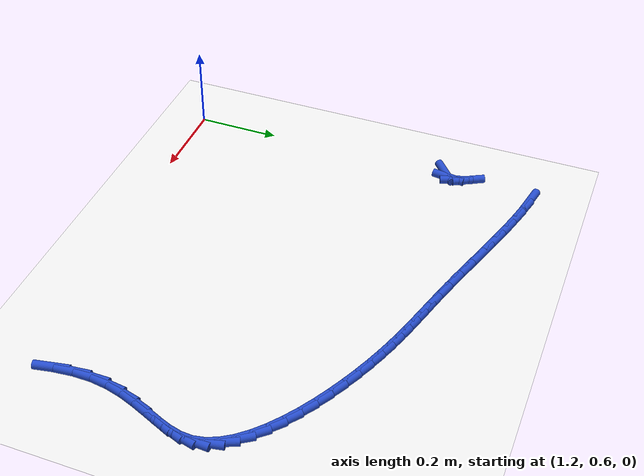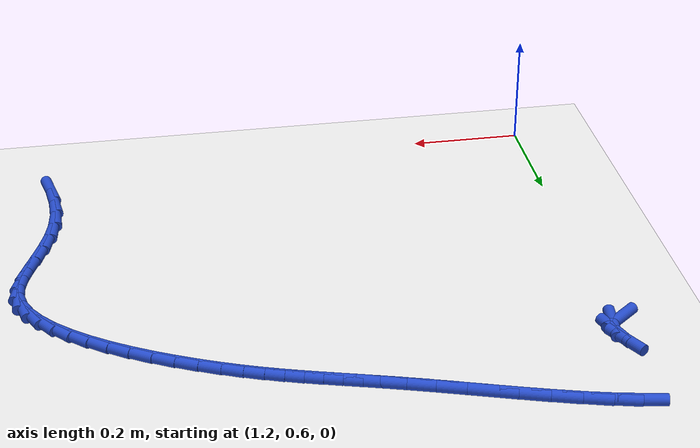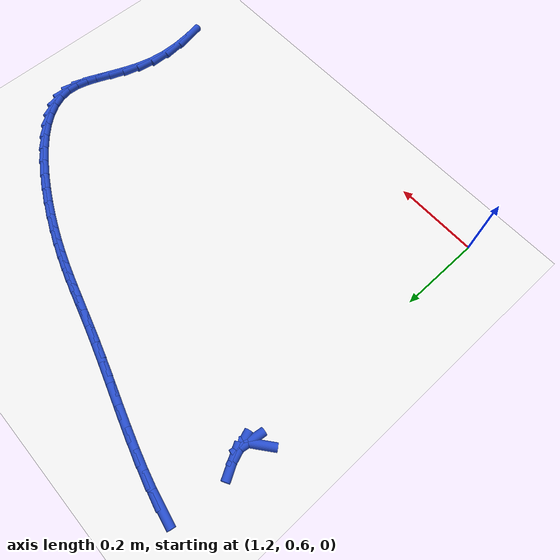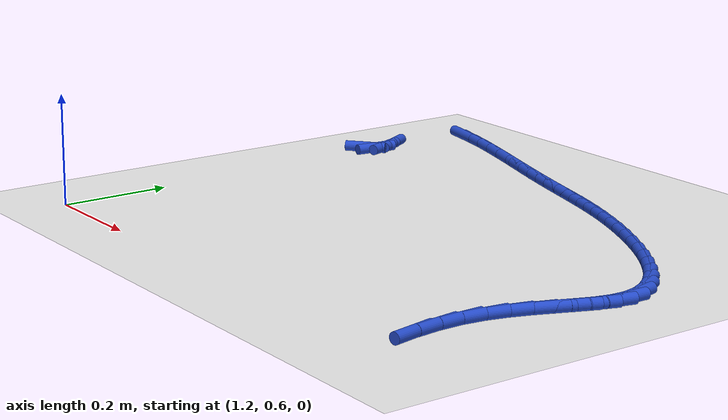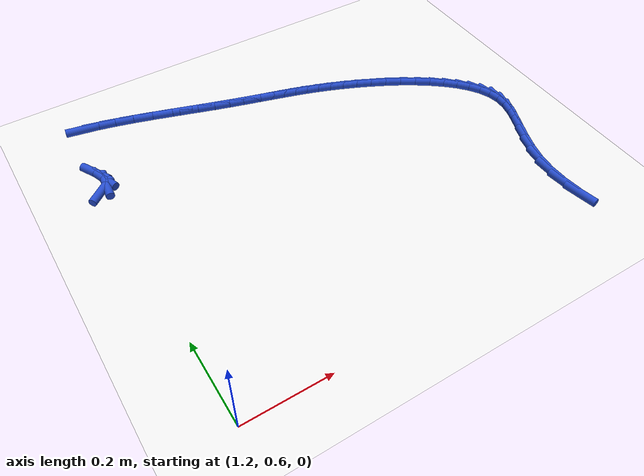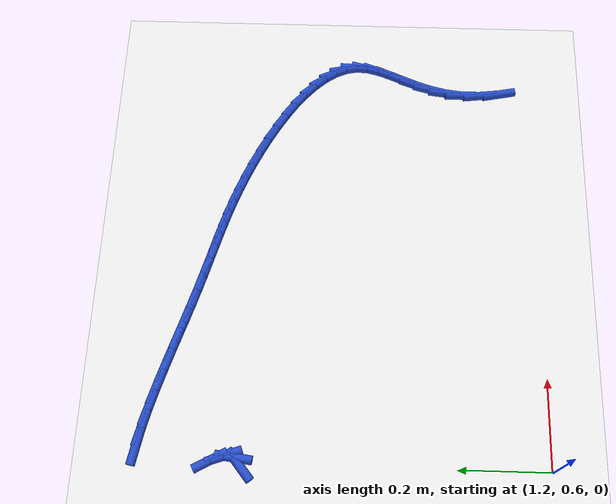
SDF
<sdf version="1.6">
 <world name="default">
  <model name="ground_plane">
   <static>1</static>
   <link name="link">
    <collision name="collision">
     <geometry><plane><normal>0 0 1</normal><size>100 100</size></plane></geometry>
     <surface><friction><ode><mu>100</mu><mu2>50</mu2></ode></friction></surface>
    </collision>
    <visual name="visual">
     <cast_shadows>0</cast_shadows>
     <geometry><plane><normal>0 0 1</normal><size>100 100</size></plane></geometry>
     <material>
      <script><uri>file://media/materials/scripts/gazebo.material</uri><name>Gazebo/WhiteGlow</name></script>
     </material>
    </visual>
   </link>
  </model>
  <model name="line">
   <link name="link_58">
    <pose>1.1975849651690709 1.2562851099100683 0.01 0 1.57 0.6848993251407175</pose>
    <collision name="collision">
     <geometry><cylinder><radius>0.01</radius><length>0.08</length></cylinder></geometry>
    </collision>
    <visual name="visual">
     <material>
      <script><name>Gazebo/Blue</name><uri>file://media/materials/scripts/gazebo.material</uri></script>
     </material>
     <geometry><cylinder><radius>0.01</radius><length>0.08</length></cylinder></geometry>
    </visual>
   </link>
   <link name="link_59">
    <pose>1.2131271688976257 1.2689799326258182 0.01 0 1.57 1.441574710932317</pose>
    <collision name="collision">
     <geometry><cylinder><radius>0.01</radius><length>0.08</length></cylinder></geometry>
    </collision>
    <visual name="visual">
     <material>
      <script><name>Gazebo/Blue</name><uri>file://media/materials/scripts/gazebo.material</uri></script>
     </material>
     <geometry><cylinder><radius>0.01</radius><length>0.08</length></cylinder></geometry>
    </visual>
   </link>
   <link name="link_60">
    <pose>1.2157745795685786 1.2893531382696346 0.01 0 1.57 -1.2304302910337432</pose>
    <collision name="collision">
     <geometry><cylinder><radius>0.01</radius><length>0.08</length></cylinder></geometry>
    </collision>
    <visual name="visual">
     <material>
      <script><name>Gazebo/Blue</name><uri>file://media/materials/scripts/gazebo.material</uri></script>
     </material>
     <geometry><cylinder><radius>0.01</radius><length>0.08</length></cylinder></geometry>
    </visual>
   </link>
   <link name="link_61">
    <pose>1.2059461501882858 1.3171054001357274 0.01 0 1.57 -1.0698379763237298</pose>
    <collision name="collision">
     <geometry><cylinder><radius>0.01</radius><length>0.08</length></cylinder></geometry>
    </collision>
    <visual name="visual">
     <material>
      <script><name>Gazebo/Blue</name><uri>file://media/materials/scripts/gazebo.material</uri></script>
     </material>
     <geometry><cylinder><radius>0.01</radius><length>0.08</length></cylinder></geometry>
    </visual>
   </link>
   <link name="link_70">
    <pose>1.2306203671135896 1.475708823409219 0.01 0 1.57 -0.19051296776615328</pose>
    <collision name="collision">
     <geometry><cylinder><radius>0.01</radius><length>0.08</length></cylinder></geometry>
    </collision>
    <visual name="visual">
     <material>
      <script><name>Gazebo/Blue</name><uri>file://media/materials/scripts/gazebo.material</uri></script>
     </material>
     <geometry><cylinder><radius>0.01</radius><length>0.08</length></cylinder></geometry>
    </visual>
   </link>
   <link name="link_71">
    <pose>1.2696224498608981 1.4681872003405705 0.01 0 1.57 -0.24040319338311478</pose>
    <collision name="collision">
     <geometry><cylinder><radius>0.01</radius><length>0.08</length></cylinder></geometry>
    </collision>
    <visual name="visual">
     <material>
      <script><name>Gazebo/Blue</name><uri>file://media/materials/scripts/gazebo.material</uri></script>
     </material>
     <geometry><cylinder><radius>0.01</radius><length>0.08</length></cylinder></geometry>
    </visual>
   </link>
   <link name="link_72">
    <pose>1.3125623816844578 1.4576607300851463 0.01 0 1.57 -0.2725953391649666</pose>
    <collision name="collision">
     <geometry><cylinder><radius>0.01</radius><length>0.08</length></cylinder></geometry>
    </collision>
    <visual name="visual">
     <material>
      <script><name>Gazebo/Blue</name><uri>file://media/materials/scripts/gazebo.material</uri></script>
     </material>
     <geometry><cylinder><radius>0.01</radius><length>0.08</length></cylinder></geometry>
    </visual>
   </link>
   <link name="link_73">
    <pose>1.3581675200273675 1.444911618475503 0.01 0 1.57 -0.2932173468096086</pose>
    <collision name="collision">
     <geometry><cylinder><radius>0.01</radius><length>0.08</length></cylinder></geometry>
    </collision>
    <visual name="visual">
     <material>
      <script><name>Gazebo/Blue</name><uri>file://media/materials/scripts/gazebo.material</uri></script>
     </material>
     <geometry><cylinder><radius>0.01</radius><length>0.08</length></cylinder></geometry>
    </visual>
   </link>
   <link name="link_74">
    <pose>1.405165222332727 1.430722071344198 0.01 0 1.57 -0.3052713640028765</pose>
    <collision name="collision">
     <geometry><cylinder><radius>0.01</radius><length>0.08</length></cylinder></geometry>
    </collision>
    <visual name="visual">
     <material>
      <script><name>Gazebo/Blue</name><uri>file://media/materials/scripts/gazebo.material</uri></script>
     </material>
     <geometry><cylinder><radius>0.01</radius><length>0.08</length></cylinder></geometry>
    </visual>
   </link>
   <link name="link_75">
    <pose>1.452282846043637 1.4158742945237885 0.01 0 1.57 -0.3099995682612716</pose>
    <collision name="collision">
     <geometry><cylinder><radius>0.01</radius><length>0.08</length></cylinder></geometry>
    </collision>
    <visual name="visual">
     <material>
      <script><name>Gazebo/Blue</name><uri>file://media/materials/scripts/gazebo.material</uri></script>
     </material>
     <geometry><cylinder><radius>0.01</radius><length>0.08</length></cylinder></geometry>
    </visual>
   </link>
   <link name="link_76">
    <pose>1.4982477486031964 1.4011504938468327 0.01 0 1.57 -0.3073044731437036</pose>
    <collision name="collision">
     <geometry><cylinder><radius>0.01</radius><length>0.08</length></cylinder></geometry>
    </collision>
    <visual name="visual">
     <material>
      <script><name>Gazebo/Blue</name><uri>file://media/materials/scripts/gazebo.material</uri></script>
     </material>
     <geometry><cylinder><radius>0.01</radius><length>0.08</length></cylinder></geometry>
    </visual>
   </link>
   <link name="link_77">
    <pose>1.5417872874545058 1.387332875145888 0.01 0 1.57 -0.2969105367224866</pose>
    <collision name="collision">
     <geometry><cylinder><radius>0.01</radius><length>0.08</length></cylinder></geometry>
    </collision>
    <visual name="visual">
     <material>
      <script><name>Gazebo/Blue</name><uri>file://media/materials/scripts/gazebo.material</uri></script>
     </material>
     <geometry><cylinder><radius>0.01</radius><length>0.08</length></cylinder></geometry>
    </visual>
   </link>
   <link name="link_78">
    <pose>1.5818228471004379 1.3750838203093583 0.01 0 1.57 -0.2856221974488345</pose>
    <collision name="collision">
     <geometry><cylinder><radius>0.01</radius><length>0.08</length></cylinder></geometry>
    </collision>
    <visual name="visual">
     <material>
      <script><name>Gazebo/Blue</name><uri>file://media/materials/scripts/gazebo.material</uri></script>
     </material>
     <geometry><cylinder><radius>0.01</radius><length>0.08</length></cylinder></geometry>
    </visual>
   </link>
   <link name="link_79">
    <pose>1.618488183142438 1.3643169956239287 0.01 0 1.57 -0.2776153722457276</pose>
    <collision name="collision">
     <geometry><cylinder><radius>0.01</radius><length>0.08</length></cylinder></geometry>
    </collision>
    <visual name="visual">
     <material>
      <script><name>Gazebo/Blue</name><uri>file://media/materials/scripts/gazebo.material</uri></script>
     </material>
     <geometry><cylinder><radius>0.01</radius><length>0.08</length></cylinder></geometry>
    </visual>
   </link>
   <link name="link_80">
    <pose>1.6523844135173513 1.3546574416637576 0.01 0 1.57 -0.27428448387926674</pose>
    <collision name="collision">
     <geometry><cylinder><radius>0.01</radius><length>0.08</length></cylinder></geometry>
    </collision>
    <visual name="visual">
     <material>
      <script><name>Gazebo/Blue</name><uri>file://media/materials/scripts/gazebo.material</uri></script>
     </material>
     <geometry><cylinder><radius>0.01</radius><length>0.08</length></cylinder></geometry>
    </visual>
   </link>
   <link name="link_81">
    <pose>1.6841136457374446 1.3457295878777844 0.01 0 1.57 -0.27686898617895733</pose>
    <collision name="collision">
     <geometry><cylinder><radius>0.01</radius><length>0.08</length></cylinder></geometry>
    </collision>
    <visual name="visual">
     <material>
      <script><name>Gazebo/Blue</name><uri>file://media/materials/scripts/gazebo.material</uri></script>
     </material>
     <geometry><cylinder><radius>0.01</radius><length>0.08</length></cylinder></geometry>
    </visual>
   </link>
   <link name="link_82">
    <pose>1.714277987314984 1.337157863714945 0.01 0 1.57 -0.28612933508758065</pose>
    <collision name="collision">
     <geometry><cylinder><radius>0.01</radius><length>0.08</length></cylinder></geometry>
    </collision>
    <visual name="visual">
     <material>
      <script><name>Gazebo/Blue</name><uri>file://media/materials/scripts/gazebo.material</uri></script>
     </material>
     <geometry><cylinder><radius>0.01</radius><length>0.08</length></cylinder></geometry>
    </visual>
   </link>
   <link name="link_83">
    <pose>1.743479545762236 1.3285666986241782 0.01 0 1.57 -0.30204442301617035</pose>
    <collision name="collision">
     <geometry><cylinder><radius>0.01</radius><length>0.08</length></cylinder></geometry>
    </collision>
    <visual name="visual">
     <material>
      <script><name>Gazebo/Blue</name><uri>file://media/materials/scripts/gazebo.material</uri></script>
     </material>
     <geometry><cylinder><radius>0.01</radius><length>0.08</length></cylinder></geometry>
    </visual>
   </link>
   <link name="link_84">
    <pose>1.7723204285914662 1.3195805220544214 0.01 0 1.57 -0.32368822105625894</pose>
    <collision name="collision">
     <geometry><cylinder><radius>0.01</radius><length>0.08</length></cylinder></geometry>
    </collision>
    <visual name="visual">
     <material>
      <script><name>Gazebo/Blue</name><uri>file://media/materials/scripts/gazebo.material</uri></script>
     </material>
     <geometry><cylinder><radius>0.01</radius><length>0.08</length></cylinder></geometry>
    </visual>
   </link>
   <link name="link_85">
    <pose>1.8014027433149415 1.3098237634546117 0.01 0 1.57 -0.3493842248012593</pose>
    <collision name="collision">
     <geometry><cylinder><radius>0.01</radius><length>0.08</length></cylinder></geometry>
    </collision>
    <visual name="visual">
     <material>
      <script><name>Gazebo/Blue</name><uri>file://media/materials/scripts/gazebo.material</uri></script>
     </material>
     <geometry><cylinder><radius>0.01</radius><length>0.08</length></cylinder></geometry>
    </visual>
   </link>
   <link name="link_86">
    <pose>1.8313285974449283 1.2989208522736873 0.01 0 1.57 -0.3770958310468767</pose>
    <collision name="collision">
     <geometry><cylinder><radius>0.01</radius><length>0.08</length></cylinder></geometry>
    </collision>
    <visual name="visual">
     <material>
      <script><name>Gazebo/Blue</name><uri>file://media/materials/scripts/gazebo.material</uri></script>
     </material>
     <geometry><cylinder><radius>0.01</radius><length>0.08</length></cylinder></geometry>
    </visual>
   </link>
   <link name="link_87">
    <pose>1.862699200383635 1.286496551924651 0.01 0 1.57 -0.4053758426625242</pose>
    <collision name="collision">
     <geometry><cylinder><radius>0.01</radius><length>0.08</length></cylinder></geometry>
    </collision>
    <visual name="visual">
     <material>
      <script><name>Gazebo/Blue</name><uri>file://media/materials/scripts/gazebo.material</uri></script>
     </material>
     <geometry><cylinder><radius>0.01</radius><length>0.08</length></cylinder></geometry>
    </visual>
   </link>
   <link name="link_88">
    <pose>1.8957735222769188 1.2723028881895568 0.01 0 1.57 -0.4352235401009157</pose>
    <collision name="collision">
     <geometry><cylinder><radius>0.01</radius><length>0.08</length></cylinder></geometry>
    </collision>
    <visual name="visual">
     <material>
      <script><name>Gazebo/Blue</name><uri>file://media/materials/scripts/gazebo.material</uri></script>
     </material>
     <geometry><cylinder><radius>0.01</radius><length>0.08</length></cylinder></geometry>
    </visual>
   </link>
   <link name="link_89">
    <pose>1.9299539405070985 1.2564104126255558 0.01 0 1.57 -0.46810985479988954</pose>
    <collision name="collision">
     <geometry><cylinder><radius>0.01</radius><length>0.08</length></cylinder></geometry>
    </collision>
    <visual name="visual">
     <material>
      <script><name>Gazebo/Blue</name><uri>file://media/materials/scripts/gazebo.material</uri></script>
     </material>
     <geometry><cylinder><radius>0.01</radius><length>0.08</length></cylinder></geometry>
    </visual>
   </link>
   <link name="link_90">
    <pose>1.964510992535149 1.2389387017348163 0.01 0 1.57 -0.5055114320424001</pose>
    <collision name="collision">
     <geometry><cylinder><radius>0.01</radius><length>0.08</length></cylinder></geometry>
    </collision>
    <visual name="visual">
     <material>
      <script><name>Gazebo/Blue</name><uri>file://media/materials/scripts/gazebo.material</uri></script>
     </material>
     <geometry><cylinder><radius>0.01</radius><length>0.08</length></cylinder></geometry>
    </visual>
   </link>
   <link name="link_91">
    <pose>1.998715215822047 1.2200073320195066 0.01 0 1.57 -0.5492145603237646</pose>
    <collision name="collision">
     <geometry><cylinder><radius>0.01</radius><length>0.08</length></cylinder></geometry>
    </collision>
    <visual name="visual">
     <material>
      <script><name>Gazebo/Blue</name><uri>file://media/materials/scripts/gazebo.material</uri></script>
     </material>
     <geometry><cylinder><radius>0.01</radius><length>0.08</length></cylinder></geometry>
    </visual>
   </link>
   <link name="link_92">
    <pose>2.0318371478287682 1.1997358799817963 0.01 0 1.57 -0.6015541578821995</pose>
    <collision name="collision">
     <geometry><cylinder><radius>0.01</radius><length>0.08</length></cylinder></geometry>
    </collision>
    <visual name="visual">
     <material>
      <script><name>Gazebo/Blue</name><uri>file://media/materials/scripts/gazebo.material</uri></script>
     </material>
     <geometry><cylinder><radius>0.01</radius><length>0.08</length></cylinder></geometry>
    </visual>
   </link>
   <link name="link_93">
    <pose>2.063147326016289 1.178243922123853 0.01 0 1.57 -0.6657263957432419</pose>
    <collision name="collision">
     <geometry><cylinder><radius>0.01</radius><length>0.08</length></cylinder></geometry>
    </collision>
    <visual name="visual">
     <material>
      <script><name>Gazebo/Blue</name><uri>file://media/materials/scripts/gazebo.material</uri></script>
     </material>
     <geometry><cylinder><radius>0.01</radius><length>0.08</length></cylinder></geometry>
    </visual>
   </link>
   <link name="link_94">
    <pose>2.0919162878455837 1.1556510349478455 0.01 0 1.57 -0.7462100841310236</pose>
    <collision name="collision">
     <geometry><cylinder><radius>0.01</radius><length>0.08</length></cylinder></geometry>
    </collision>
    <visual name="visual">
     <material>
      <script><name>Gazebo/Blue</name><uri>file://media/materials/scripts/gazebo.material</uri></script>
     </material>
     <geometry><cylinder><radius>0.01</radius><length>0.08</length></cylinder></geometry>
    </visual>
   </link>
   <link name="link_95">
    <pose>2.1174145707776297 1.1320767949559427 0.01 0 1.57 -0.8492695564850001</pose>
    <collision name="collision">
     <geometry><cylinder><radius>0.01</radius><length>0.08</length></cylinder></geometry>
    </collision>
    <visual name="visual">
     <material>
      <script><name>Gazebo/Blue</name><uri>file://media/materials/scripts/gazebo.material</uri></script>
     </material>
     <geometry><cylinder><radius>0.01</radius><length>0.08</length></cylinder></geometry>
    </visual>
   </link>
   <link name="link_96">
    <pose>2.138912712273402 1.107640778650313 0.01 0 1.57 -0.9832596521580854</pose>
    <collision name="collision">
     <geometry><cylinder><radius>0.01</radius><length>0.08</length></cylinder></geometry>
    </collision>
    <visual name="visual">
     <material>
      <script><name>Gazebo/Blue</name><uri>file://media/materials/scripts/gazebo.material</uri></script>
     </material>
     <geometry><cylinder><radius>0.01</radius><length>0.08</length></cylinder></geometry>
    </visual>
   </link>
   <link name="link_97">
    <pose>2.1556812497938767 1.082462562533125 0.01 0 1.57 -1.1576832951598555</pose>
    <collision name="collision">
     <geometry><cylinder><radius>0.01</radius><length>0.08</length></cylinder></geometry>
    </collision>
    <visual name="visual">
     <material>
      <script><name>Gazebo/Blue</name><uri>file://media/materials/scripts/gazebo.material</uri></script>
     </material>
     <geometry><cylinder><radius>0.01</radius><length>0.08</length></cylinder></geometry>
    </visual>
   </link>
   <link name="link_98">
    <pose>2.1669907208000296 1.0566617231065474 0.01 0 1.57 -1.3785176320052264</pose>
    <collision name="collision">
     <geometry><cylinder><radius>0.01</radius><length>0.08</length></cylinder></geometry>
    </collision>
    <visual name="visual">
     <material>
      <script><name>Gazebo/Blue</name><uri>file://media/materials/scripts/gazebo.material</uri></script>
     </material>
     <geometry><cylinder><radius>0.01</radius><length>0.08</length></cylinder></geometry>
    </visual>
   </link>
   <link name="link_99">
    <pose>2.172111662756322 1.0303578368719788 0.01 0 1.57 1.5182624858118672</pose>
    <collision name="collision">
     <geometry><cylinder><radius>0.01</radius><length>0.08</length></cylinder></geometry>
    </collision>
    <visual name="visual">
     <material>
      <script><name>Gazebo/Blue</name><uri>file://media/materials/scripts/gazebo.material</uri></script>
     </material>
     <geometry><cylinder><radius>0.01</radius><length>0.08</length></cylinder></geometry>
    </visual>
   </link>
   <link name="link_100">
    <pose>2.170703867036846 1.0035846108043573 0.01 0 1.57 1.3312271332416437</pose>
    <collision name="collision">
     <geometry><cylinder><radius>0.01</radius><length>0.08</length></cylinder></geometry>
    </collision>
    <visual name="visual">
     <material>
      <script><name>Gazebo/Blue</name><uri>file://media/materials/scripts/gazebo.material</uri></script>
     </material>
     <geometry><cylinder><radius>0.01</radius><length>0.08</length></cylinder></geometry>
    </visual>
   </link>
   <link name="link_101">
    <pose>2.163974451298745 0.9760344112474197 0.01 0 1.57 1.221533396298307</pose>
    <collision name="collision">
     <geometry><cylinder><radius>0.01</radius><length>0.08</length></cylinder></geometry>
    </collision>
    <visual name="visual">
     <material>
      <script><name>Gazebo/Blue</name><uri>file://media/materials/scripts/gazebo.material</uri></script>
     </material>
     <geometry><cylinder><radius>0.01</radius><length>0.08</length></cylinder></geometry>
    </visual>
   </link>
   <link name="link_102">
    <pose>2.153514957486388 0.9473148004345574 0.01 0 1.57 1.1765468519358542</pose>
    <collision name="collision">
     <geometry><cylinder><radius>0.01</radius><length>0.08</length></cylinder></geometry>
    </collision>
    <visual name="visual">
     <material>
      <script><name>Gazebo/Blue</name><uri>file://media/materials/scripts/gazebo.material</uri></script>
     </material>
     <geometry><cylinder><radius>0.01</radius><length>0.08</length></cylinder></geometry>
    </visual>
   </link>
   <link name="link_103">
    <pose>2.1409169275441453 0.9170333405991626 0.01 0 1.57 1.183602923210244</pose>
    <collision name="collision">
     <geometry><cylinder><radius>0.01</radius><length>0.08</length></cylinder></geometry>
    </collision>
    <visual name="visual">
     <material>
      <script><name>Gazebo/Blue</name><uri>file://media/materials/scripts/gazebo.material</uri></script>
     </material>
     <geometry><cylinder><radius>0.01</radius><length>0.08</length></cylinder></geometry>
    </visual>
   </link>
   <link name="link_104">
    <pose>2.1277719034163853 0.8847975939746269 0.01 0 1.57 1.2342088013385932</pose>
    <collision name="collision">
     <geometry><cylinder><radius>0.01</radius><length>0.08</length></cylinder></geometry>
    </collision>
    <visual name="visual">
     <material>
      <script><name>Gazebo/Blue</name><uri>file://media/materials/scripts/gazebo.material</uri></script>
     </material>
     <geometry><cylinder><radius>0.01</radius><length>0.08</length></cylinder></geometry>
    </visual>
   </link>
   <link name="link_105">
    <pose>2.115671427047477 0.8502151227943411 0.01 0 1.57 1.3224418651399485</pose>
    <collision name="collision">
     <geometry><cylinder><radius>0.01</radius><length>0.08</length></cylinder></geometry>
    </collision>
    <visual name="visual">
     <material>
      <script><name>Gazebo/Blue</name><uri>file://media/materials/scripts/gazebo.material</uri></script>
     </material>
     <geometry><cylinder><radius>0.01</radius><length>0.08</length></cylinder></geometry>
    </visual>
   </link>
   <link name="link_106">
    <pose>2.106207040381788 0.8128934892916969 0.01 0 1.57 1.442060179661664</pose>
    <collision name="collision">
     <geometry><cylinder><radius>0.01</radius><length>0.08</length></cylinder></geometry>
    </collision>
    <visual name="visual">
     <material>
      <script><name>Gazebo/Blue</name><uri>file://media/materials/scripts/gazebo.material</uri></script>
     </material>
     <geometry><cylinder><radius>0.01</radius><length>0.08</length></cylinder></geometry>
    </visual>
   </link>
   <link name="link_107">
    <pose>2.1009702853636902 0.7724402557000858 0.01 0 1.57 -1.5659859223188872</pose>
    <collision name="collision">
     <geometry><cylinder><radius>0.01</radius><length>0.08</length></cylinder></geometry>
    </collision>
    <visual name="visual">
     <material>
      <script><name>Gazebo/Blue</name><uri>file://media/materials/scripts/gazebo.material</uri></script>
     </material>
     <geometry><cylinder><radius>0.01</radius><length>0.08</length></cylinder></geometry>
    </visual>
   </link>
   <link name="link_108">
    <pose>2.1011809082283928 0.7286557379642724 0.01 0 1.57 -1.4583363062159684</pose>
    <collision name="collision">
     <geometry><cylinder><radius>0.01</radius><length>0.08</length></cylinder></geometry>
    </collision>
    <visual name="visual">
     <material>
      <script><name>Gazebo/Blue</name><uri>file://media/materials/scripts/gazebo.material</uri></script>
     </material>
     <geometry><cylinder><radius>0.01</radius><length>0.08</length></cylinder></geometry>
    </visual>
   </link>
   <link name="link_109">
    <pose>2.106429146202105 0.6821850544338418 0.01 0 1.57 -1.3779113198640336</pose>
    <collision name="collision">
     <geometry><cylinder><radius>0.01</radius><length>0.08</length></cylinder></geometry>
    </collision>
    <visual name="visual">
     <material>
      <script><name>Gazebo/Blue</name><uri>file://media/materials/scripts/gazebo.material</uri></script>
     </material>
     <geometry><cylinder><radius>0.01</radius><length>0.08</length></cylinder></geometry>
    </visual>
   </link>
  </model>
 </world>
</sdf>
